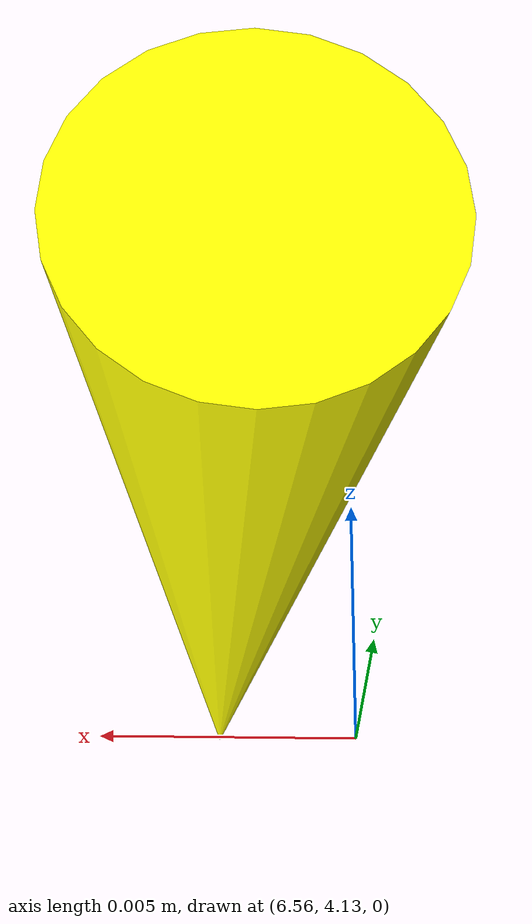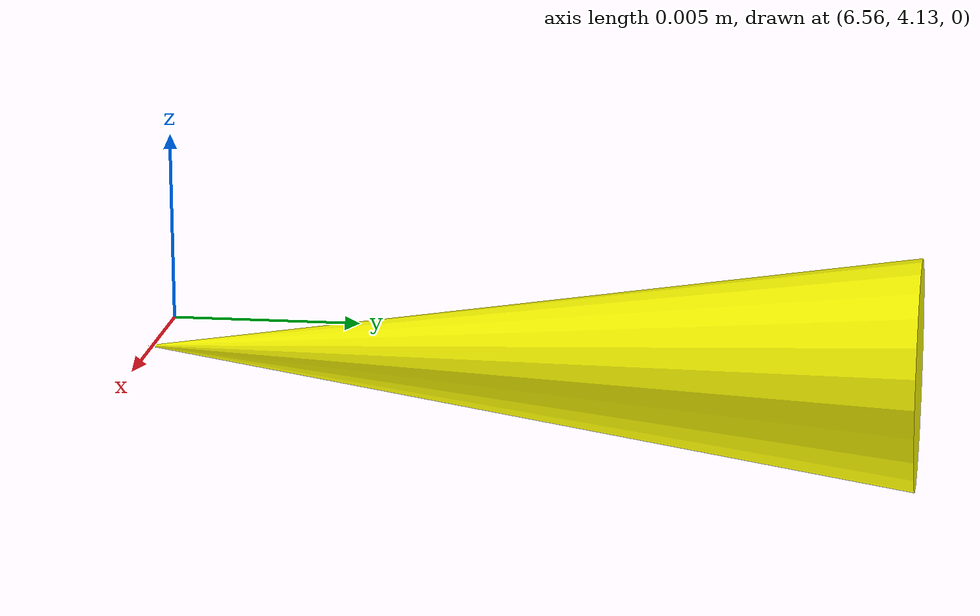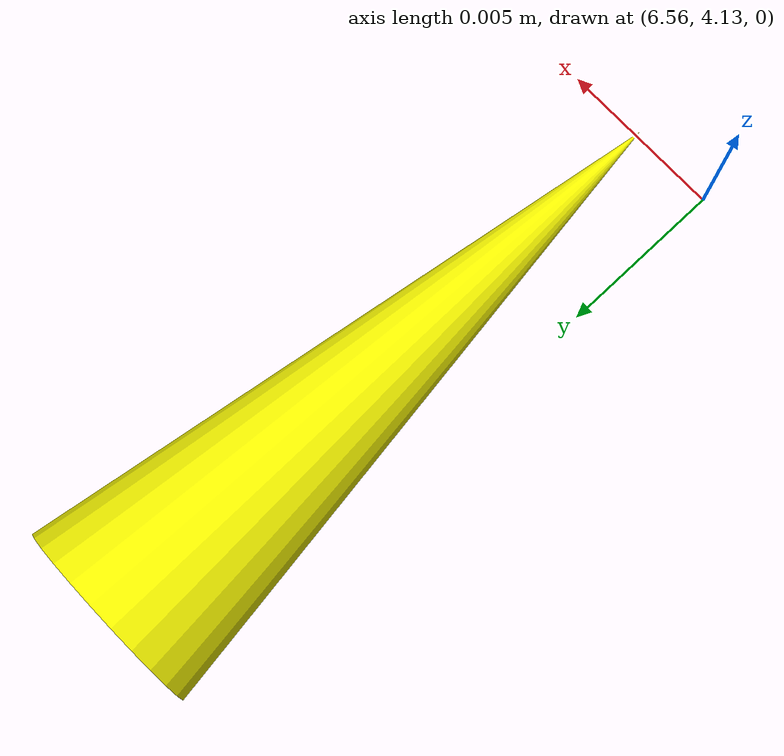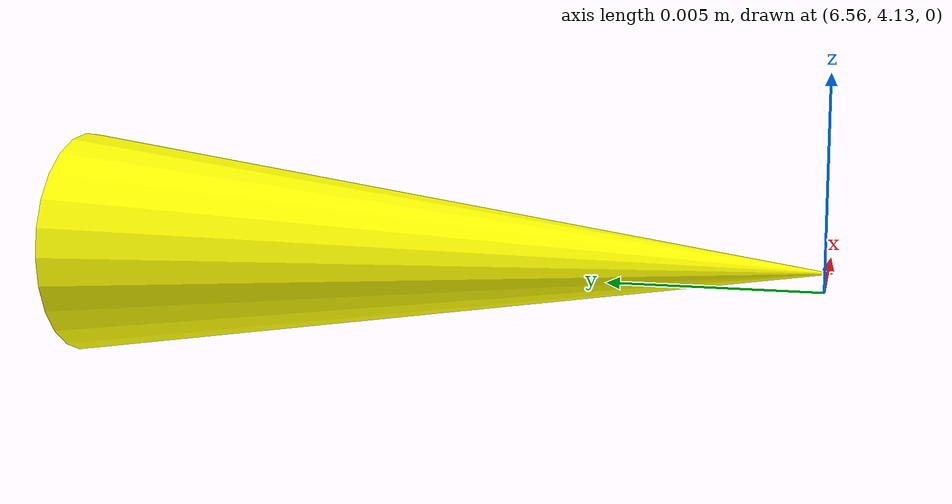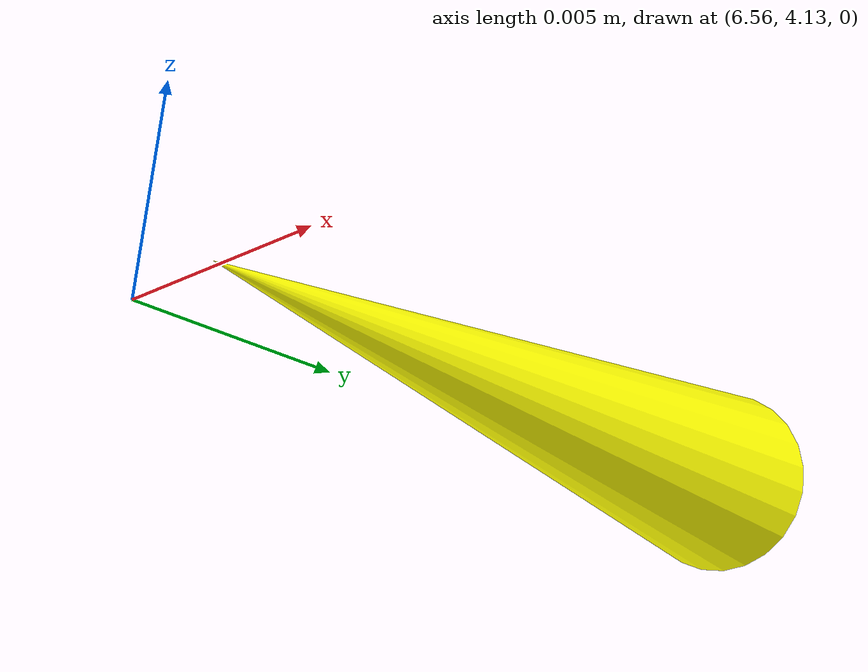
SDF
<?xml version="1.0" ?>
<sdf version="1.9">
  <model name="Cone">
    <link name="link">
      <inertial>
			<mass>0</mass>
			<inertia>
			<ixx>0.166667</ixx>
			<ixy>0</ixy>
			<ixz>0</ixz>
			<iyy>0.166667</iyy>
			<iyz>0</iyz>
			<izz>0.166667</izz>
			</inertia>
			</inertial>
      <collision name="collision">
        <geometry>
          <mesh>
            <scale>0.001 0.001 0.001</scale>
            <uri>model://cone/meshes/cone.stl</uri>
          </mesh>
        </geometry>
      </collision>
      <visual name="visual">
        <geometry>
          <mesh>
            <scale>0.001 0.001 0.001</scale>
            <uri>model://cone/meshes/cone.stl</uri>
          </mesh>
        </geometry>
        <material>
            <ambient>1 1 0 1</ambient>
            <diffuse>1 1 0 1</diffuse>
            <specular>1 1 0 1</specular>
          </material>
      </visual>

    </link>
    <pose>6.562635671015661 4.149845757593543 0.0 1.57 0 0</pose>
    <static>true</static>
  </model>
</sdf>
